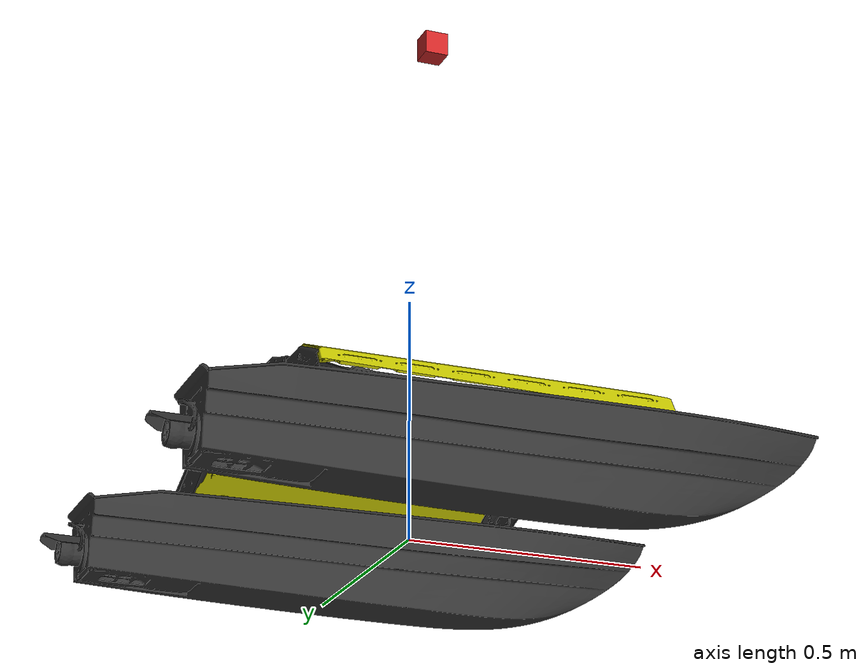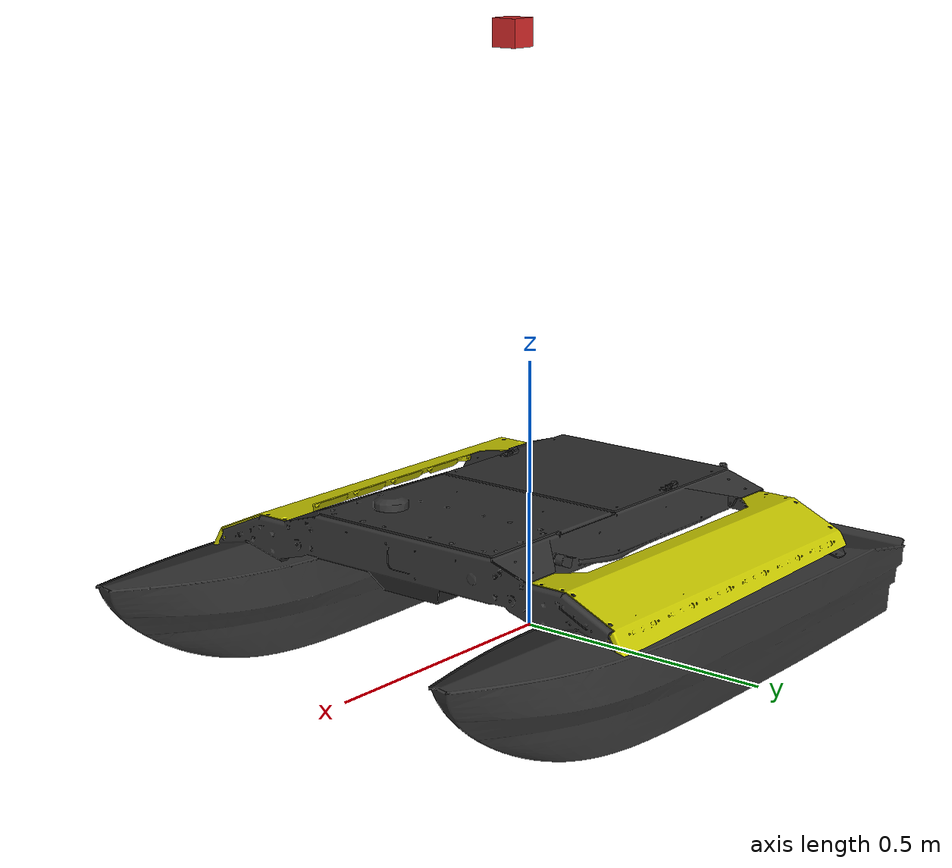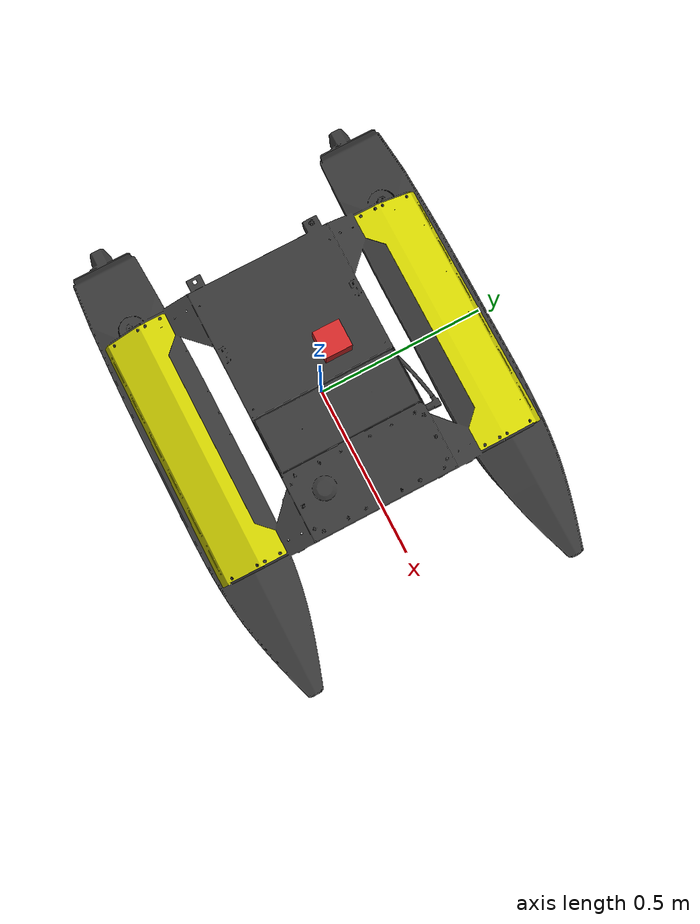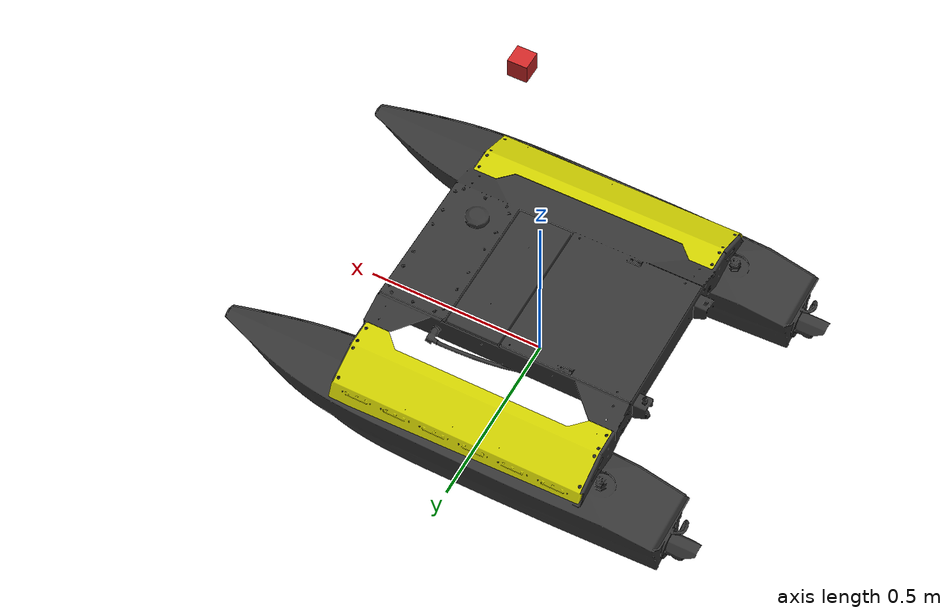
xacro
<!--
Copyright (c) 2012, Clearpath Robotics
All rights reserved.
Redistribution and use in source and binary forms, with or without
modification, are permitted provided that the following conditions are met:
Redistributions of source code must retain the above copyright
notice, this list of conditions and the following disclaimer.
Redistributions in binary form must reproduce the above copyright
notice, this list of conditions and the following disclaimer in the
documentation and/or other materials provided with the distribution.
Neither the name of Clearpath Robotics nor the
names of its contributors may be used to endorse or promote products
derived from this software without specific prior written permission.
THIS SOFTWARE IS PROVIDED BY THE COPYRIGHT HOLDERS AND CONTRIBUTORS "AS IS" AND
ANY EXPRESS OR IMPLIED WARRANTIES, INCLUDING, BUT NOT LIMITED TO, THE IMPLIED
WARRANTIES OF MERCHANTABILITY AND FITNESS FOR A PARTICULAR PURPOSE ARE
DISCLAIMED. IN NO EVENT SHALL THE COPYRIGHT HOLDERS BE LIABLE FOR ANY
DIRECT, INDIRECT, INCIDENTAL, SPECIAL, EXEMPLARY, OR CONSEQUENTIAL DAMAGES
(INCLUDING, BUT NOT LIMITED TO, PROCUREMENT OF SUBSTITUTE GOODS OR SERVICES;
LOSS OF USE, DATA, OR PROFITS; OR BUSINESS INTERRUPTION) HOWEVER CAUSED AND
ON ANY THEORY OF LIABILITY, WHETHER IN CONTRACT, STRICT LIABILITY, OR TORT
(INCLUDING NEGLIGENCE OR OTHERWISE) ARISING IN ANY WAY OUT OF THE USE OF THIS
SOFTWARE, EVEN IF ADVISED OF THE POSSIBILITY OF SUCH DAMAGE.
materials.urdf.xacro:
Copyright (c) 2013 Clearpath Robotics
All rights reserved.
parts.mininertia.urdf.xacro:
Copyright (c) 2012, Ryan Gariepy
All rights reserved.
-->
<?xml version="1.0"?>
<!-- Modified to minimize inertia terms
Brian Bingham
Jan, 2017
Original copyright below-->

<robot name="kingfisher" xmlns:xacro="http://ros.org/wiki/xacro">

  <!-- Included URDF/XACRO Files -->
  <xacro:include filename="$(find kingfisher_description)/urdf/materials.urdf.xacro" />
  <!-- Replace original Kingfisher file with new one with minimial inertia-->
  <xacro:include filename="$(find kingfisher_gazebo)/urdf/parts.mininertia.urdf.xacro" />

  <!-- PROPERTY LIST -->
  <!--All units in m-kg-s-radians unit system -->
  <property name="M_PI" value="3.1415926535897931" />
  <property name="HH" value="0.09" />
  <!-- BASE-FOOTPRINT -->
  <!-- base_fotporint is a fictitious link(frame) that is on the ground right below base_link origin, navigation stack depends on this frame -->
  <link name="base_footprint">
    <inertial>
      <mass value="1e-5" />
      <origin xyz="0 0 ${HH} " />
      <inertia ixx="1e-6" ixy="0.0" ixz="0.0"
	       iyy="1e-6" iyz="0.0"
	       izz="1e-6" />
    </inertial>

    <visual>
      <origin xyz="0 0 ${HH}" rpy="0 0 0" />
      <geometry>
	<box size="0.001 0.001 0.001" />
      </geometry>
    </visual>
  </link>

  <gazebo reference="base_footprint">
    <turnGravityOff>false</turnGravityOff>
  </gazebo>

  <!-- BASE-LINK -->
  <!--Actual body/chassis of the robot-->
  <link name="base_link">
    <inertial>
      <mass value="29" />
      <origin xyz="0 0 ${HH}" />
      <inertia ixx="10" ixy="0" ixz="0" iyy="10" iyz="0" izz="10" />
    </inertial>

    <visual>
      <origin xyz="0 0 ${HH}" rpy="${M_PI/2} 0 ${M_PI/2}" />
      <geometry>
	<mesh filename="package://kingfisher_description/meshes/kingfisher_base.stl" />
      </geometry>
      <material name="DarkGray" />
    </visual>

    <collision>
      <origin xyz="0 0 0" rpy="0 0 0" />
      <geometry>
	<box size = "1.35 0.98 0.2"/> <!--making it slightly bigger in x and z direction-->
      </geometry>
    </collision>
  </link>
  <joint name="base_footprint_joint" type="fixed">
    <origin xyz="0 0 ${HH}" rpy="0 0 0" />
    <parent link="base_footprint"/>
    <child link="base_link" />
  </joint>
  <gazebo reference="base_link">
    <material>Gazebo/FlatBlack</material>
    <turnGravityOff>false</turnGravityOff>
  </gazebo>

  <!-- PANEL-LINKS -->
  <!-- Top Plate -->
  <kingfisher_part parent="base_footprint" name="left_panel" mesh="left_panel"
		   translateX="0.0" translateY="-0.35" translateZ="${0.05+HH*2}"
		   rotateX="${M_PI/2}" rotateY="0.0" rotateZ="${M_PI/2}"
		   color="Yellow" />
  <gazebo reference="base_footprint_left_panel_part">
    <material>Gazebo/Yellow</material>
  </gazebo>

  <kingfisher_part parent="base_footprint" name="right_panel" mesh="right_panel"
		   translateX="0.0" translateY="0.35" translateZ="${0.05+HH*2}"
		   rotateX="${M_PI/2}" rotateY="0.0" rotateZ="${-M_PI/2}"
		   color="Yellow" />
  <gazebo reference="base_footprint_right_panel_part">
    <material>Gazebo/Yellow</material>
  </gazebo>

  <xacro:property name="camera_link" value="0.05" /> <!-- Size of square 'camera' box -->

   <joint name="camera_joint" type="fixed">
    <axis xyz="0 1 0" />
    <origin xyz="${camera_link} 0 1" rpy="0 0 0"/>
    <parent link="base_link"/>
    <child link="camera_link"/>
  </joint>

  <!-- Camera -->
  <link name="camera_link">
    <collision>
      <origin xyz="0 0 0" rpy="0 0 0"/>
      <geometry>
    <box size="${camera_link} ${camera_link} ${camera_link}"/>
      </geometry>
    </collision>

    <visual>
      <origin xyz="0 0 0" rpy="0 0 0"/>
      <geometry>
    <box size="${camera_link} ${camera_link} ${camera_link}"/>
      </geometry>
      <material name="red"/>
    </visual>

    <inertial>
      <mass value="1e-5" />
      <origin xyz="0 0 0" rpy="0 0 0"/>
      <inertia ixx="1e-6" ixy="0" ixz="0" iyy="1e-6" iyz="0" izz="1e-6" />
    </inertial>
  </link>

  <!-- camera -->
  <gazebo reference="camera_link">
    <sensor type="camera" name="camera1">
      <update_rate>30.0</update_rate>
      <camera name="head">
        <horizontal_fov>1.3962634</horizontal_fov>
        <image>
          <width>800</width>
          <height>800</height>
          <format>R8G8B8</format>
        </image>
        <clip>
          <near>0.02</near>
          <far>300</far>
        </clip>
        <noise>
          <type>gaussian</type>
          <!-- Noise is sampled independently per pixel on each frame.
               That pixel's noise value is added to each of its color
               channels, which at that point lie in the range [0,1]. -->
          <mean>0.0</mean>
          <stddev>0.007</stddev>
        </noise>
      </camera>
      <plugin name="camera_controller" filename="libgazebo_ros_camera.so">
        <alwaysOn>true</alwaysOn>
        <updateRate>0.0</updateRate>
        <cameraName>rrbot/camera1</cameraName>
        <imageTopicName>image_raw</imageTopicName>
        <cameraInfoTopicName>camera_info</cameraInfoTopicName>
        <frameName>camera_link</frameName>
        <hackBaseline>0.07</hackBaseline>
        <distortionK1>0.0</distortionK1>
        <distortionK2>0.0</distortionK2>
        <distortionK3>0.0</distortionK3>
        <distortionT1>0.0</distortionT1>
        <distortionT2>0.0</distortionT2>
      </plugin>
    </sensor>
  </gazebo>
</robot>

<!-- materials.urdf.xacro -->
<robot>
	<material name="Black">
		<color rgba="0.0 0.0 0.0 1.0"/>
	</material>

	<material name="Gray">
		<color rgba="0.7 0.7 0.7 1.0"/>
	</material>

	<material name="DarkGray">
		<color rgba="0.2 0.2 0.2 1.0"/>
	</material>

	<material name="White">
		<color rgba="1.0 1.0 1.0 1.0"/>
	</material>

	<material name="Yellow">
		<color rgba="0.8 0.8 0.0 1.0"/>
	</material>
</robot>

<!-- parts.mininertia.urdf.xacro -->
<!-- Modified to minimize inertia terms
Brian Bingham
Jan, 2017
Original copyright below-->

<robot xmlns:sensor="http://playerstage.sourceforge.net/gazebo/xmlschema/#sensor"
	xmlns:controller="http://playerstage.sourceforge.net/gazebo/xmlschema/#controller"
	xmlns:interface="http://playerstage.sourceforge.net/gazebo/xmlschema/#interface"
	xmlns:xacro="http://ros.org/wiki/xacro" name="kingfisher_part">

	<property name="x_com" value="0.00000000" /> <!-- com : center of mass -->
	<property name="y_com" value="0.00000000" /> <!-- com : center of mass -->
	<property name="z_com" value="0.00000000" /> <!-- com : center of mass -->

	<property name="x_size" value="1.0" />
	<property name="y_size" value="1.0" />
	<property name="z_size" value="1.0" />

	<property name="min_inertia" value="0.00001"/>

	<property name="mass" value="${min_inertia}" /> <!-- in kg-->

	<property name="ixx_com_cs" value="${min_inertia}" /> <!-- at center of mass aligned with coordinate system, kg*m^2-->
	<property name="ixy_com_cs" value="0.0" /> <!-- at center of mass aligned with coordinate system, kg*m^2-->
	<property name="ixz_com_cs" value="0.0" /> <!-- at center of mass aligned with coordinate system, kg*m^2-->
	<property name="iyy_com_cs" value="${min_inertia}" /> <!-- at center of mass aligned with coordinate system, kg*m^2-->
	<property name="iyz_com_cs" value="0.00" /> <!-- at center of mass aligned with coordinate system, kg*m^2-->
	<property name="izz_com_cs" value="${min_inertia}" /> <!-- at center of mass aligned with coordinate system, kg*m^2-->

	<xacro:macro name="kingfisher_part" params="parent name mesh translateX translateY translateZ rotateX rotateY rotateZ color">
		<joint name="${parent}_${name}_joint" type="fixed">
		    <origin xyz="${translateX} ${translateY} ${translateZ}"
		            rpy="${rotateX} ${rotateY} ${rotateZ}" />
		    <parent link="${parent}" />
		    <child link="${parent}_${name}_part" />
		</joint>

		<link name="${parent}_${name}_part">
			<inertial>
				<mass value="${mass}" />
				<origin xyz="${x_com} ${y_com} ${z_com}" />
				<inertia ixx="${ixx_com_cs}" ixy="${ixy_com_cs}" ixz="${ixz_com_cs}"
					iyy="${iyy_com_cs}" iyz="${iyz_com_cs}" izz="${izz_com_cs}" />
			</inertial>
			<visual>
				<origin xyz="0 0 0" rpy="0 0 0" />
				<geometry>
					<mesh filename="package://kingfisher_description/meshes/${mesh}.stl" />
				</geometry>
        <material name="${color}" />
			</visual>
			<collision>
				<origin xyz="0 0 0" rpy="0 0 0"/>
				<geometry>
					<box size="0.001 0.001 0.001" /> <!--the collision boundary for parts are taken into account by collision boundary of the base_link-->
				</geometry>
			</collision>
		</link>

  	</xacro:macro>
</robot>
